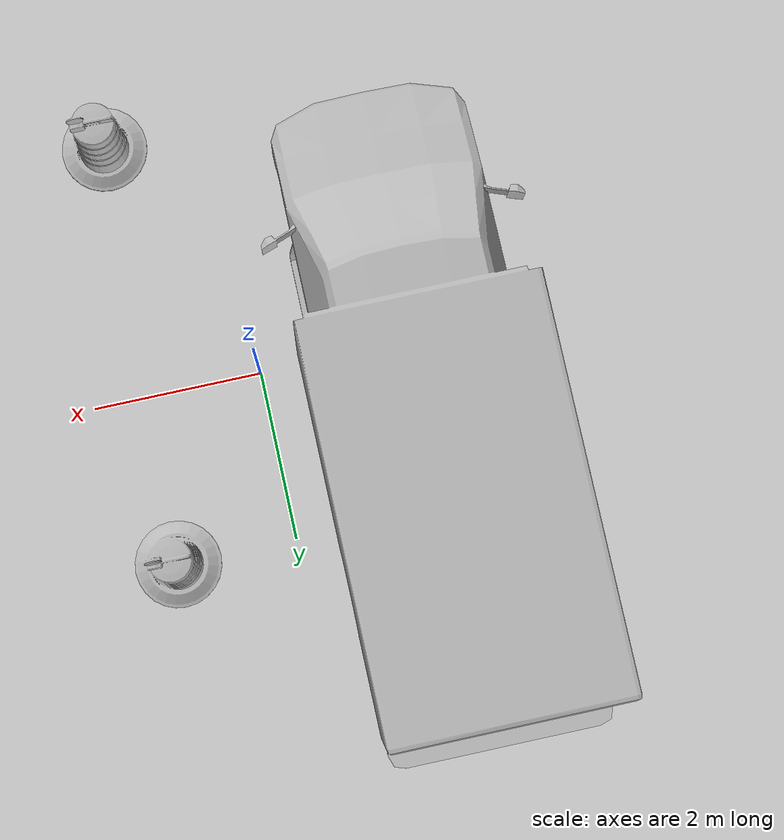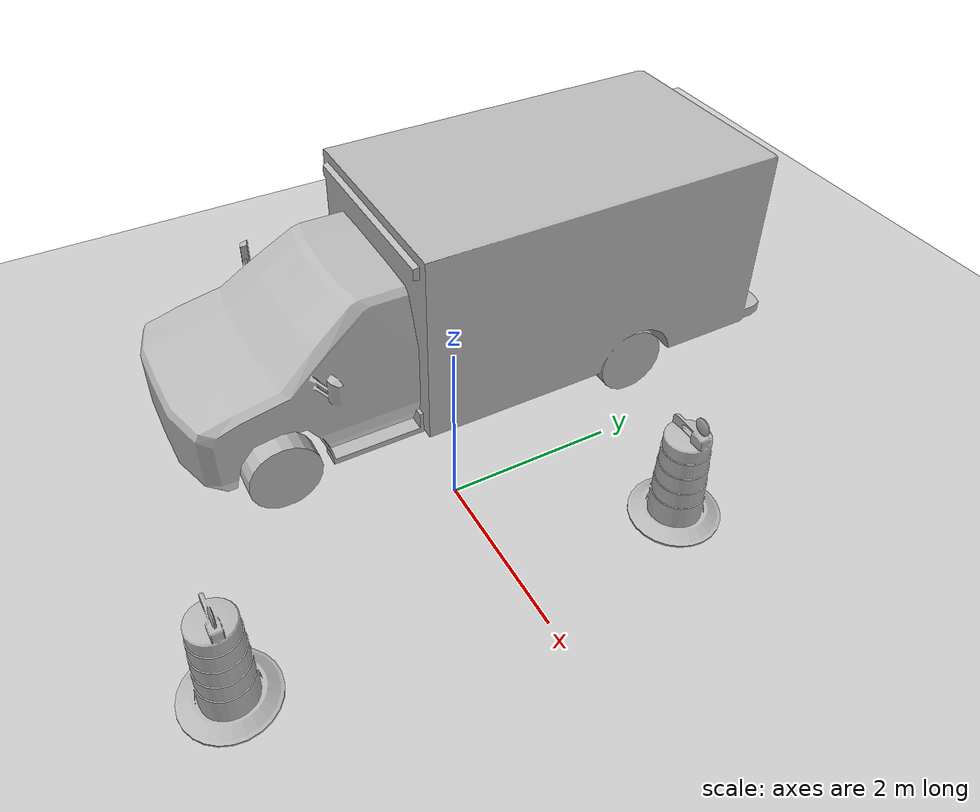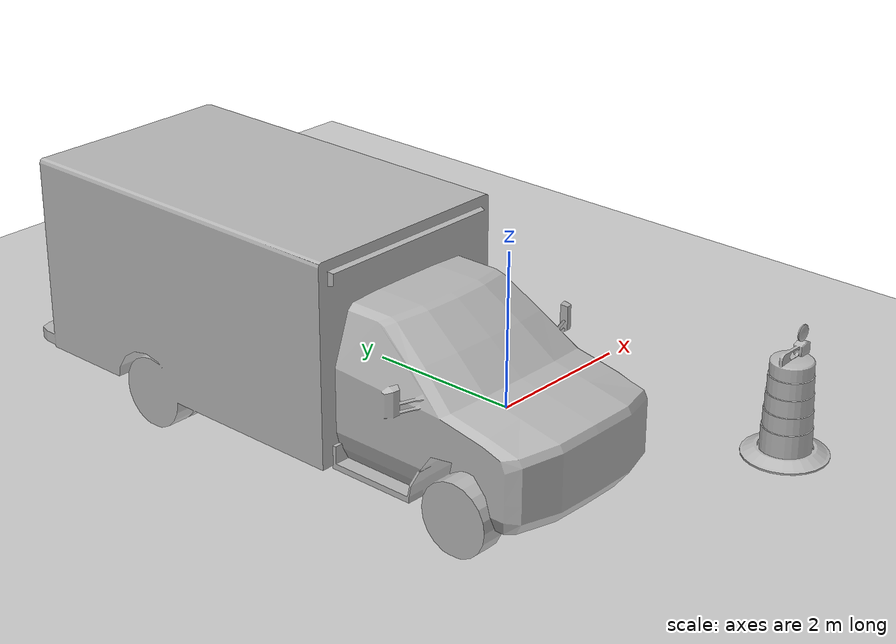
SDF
<sdf version="1.7">
 <world name="default">
  <light name="sun" type="directional">
   <pose>0 0 10 0 -0 0</pose>
   <diffuse>0.8 0.8 0.8 1</diffuse>
   <specular>0.2 0.2 0.2 1</specular>
   <attenuation>
    <range>1000</range>
    <constant>0.9</constant>
    <linear>0.01</linear>
    <quadratic>0.001</quadratic>
   </attenuation>
   <direction>-0.5 0.1 -0.9</direction>
   <spot><inner_angle>0</inner_angle><outer_angle>0</outer_angle><falloff>0</falloff></spot>
  </light>
  <model name="ground_plane">
   <static>1</static>
   <link name="link">
    <collision name="collision">
     <geometry><plane><normal>0 0 1</normal><size>100 100</size></plane></geometry>
     <surface><friction><ode><mu>100</mu><mu2>50</mu2></ode></friction></surface>
    </collision>
    <visual name="visual">
     <cast_shadows>0</cast_shadows>
     <geometry><plane><normal>0 0 1</normal><size>100 100</size></plane></geometry>
     <material>
      <script><uri>file://media/materials/scripts/gazebo.material</uri><name>Gazebo/Grey</name></script>
     </material>
    </visual>
   </link>
  </model>
  <gravity>0 0 -9.8</gravity>
  <magnetic_field>6e-06 2.3e-05 -4.2e-05</magnetic_field>
  <atmosphere type="adiabatic"/>
  <physics type="ode">
   <max_step_size>0.001</max_step_size>
   <real_time_factor>1</real_time_factor>
   <real_time_update_rate>1000</real_time_update_rate>
  </physics>
  <scene><ambient>0.4 0.4 0.4 1</ambient><background>0.7 0.7 0.7 1</background><shadows>1</shadows></scene>
  <spherical_coordinates>
   <surface_model>EARTH_WGS84</surface_model>
   <latitude_deg>0</latitude_deg>
   <longitude_deg>0</longitude_deg>
   <elevation>0</elevation>
   <heading_deg>0</heading_deg>
  </spherical_coordinates>
  <model name="ambulance">
   <static>1</static>
   <link name="link">
    <collision name="collision">
     <geometry>
      <mesh><scale>0.0254 0.0254 0.0254</scale><uri>model://ambulance/meshes/ambulance.obj</uri></mesh>
     </geometry>
    </collision>
    <visual name="visual">
     <geometry>
      <mesh><scale>0.0254 0.0254 0.0254</scale><uri>model://ambulance/meshes/ambulance.obj</uri></mesh>
     </geometry>
    </visual>
   </link>
   <pose>-1.79758 1.1337 0 0 -0 0</pose>
  </model>
  <model name="Construction Barrel">
   <link name="link">
    <inertial>
     <pose>0 0 0.4 0 -0 0</pose>
     <mass>500</mass>
     <inertia><ixx>51.2096</ixx><iyy>51.2096</iyy><izz>25</izz><ixy>0</ixy><ixz>0</ixz><iyz>0</iyz></inertia>
    </inertial>
    <collision name="collision">
     <geometry><mesh><uri>model://construction_barrel/meshes/construction_barrel.dae</uri></mesh></geometry>
    </collision>
    <visual name="visual">
     <geometry><mesh><uri>model://construction_barrel/meshes/construction_barrel.dae</uri></mesh></geometry>
    </visual>
   </link>
   <pose>1.26359 -3.05128 0 0 0 -3e-06</pose>
  </model>
  <model name="Construction Barrel_0">
   <link name="link">
    <inertial>
     <pose>0 0 0.4 0 -0 0</pose>
     <mass>500</mass>
     <inertia><ixx>51.2096</ixx><iyy>51.2096</iyy><izz>25</izz><ixy>0</ixy><ixz>0</ixz><iyz>0</iyz></inertia>
    </inertial>
    <collision name="collision">
     <geometry><mesh><uri>model://construction_barrel/meshes/construction_barrel.dae</uri></mesh></geometry>
    </collision>
    <visual name="visual">
     <geometry><mesh><uri>model://construction_barrel/meshes/construction_barrel.dae</uri></mesh></geometry>
    </visual>
   </link>
   <pose>1.4117 1.99719 -1e-06 3e-06 -2e-06 -2e-06</pose>
  </model>
 </world>
</sdf>
